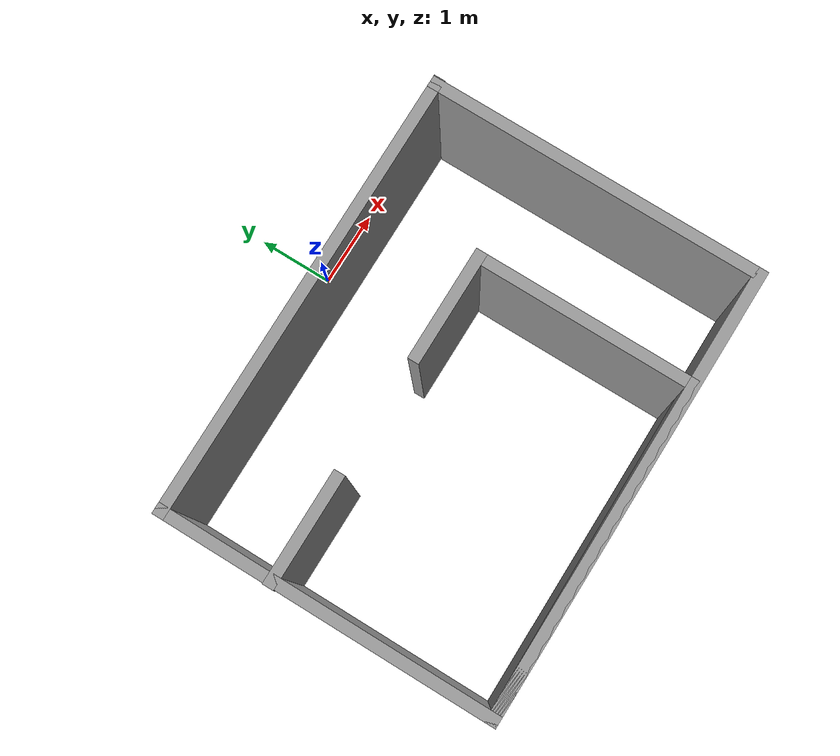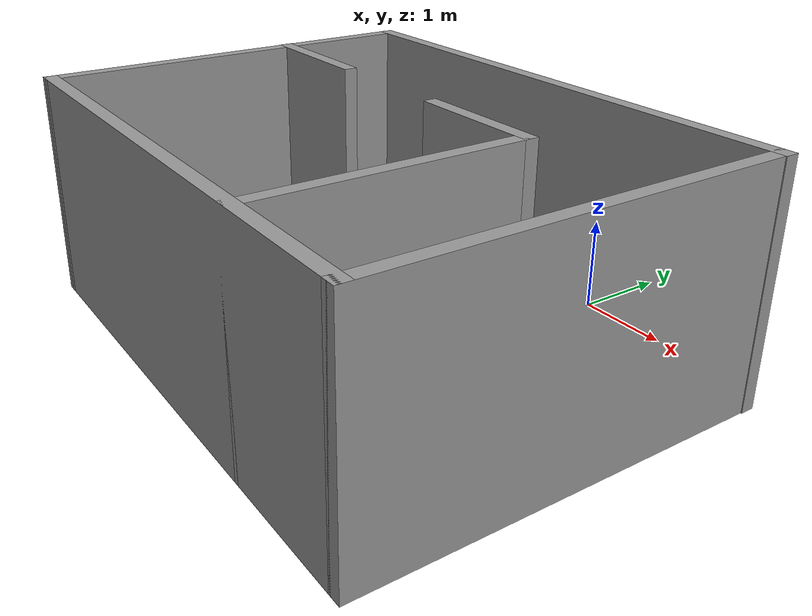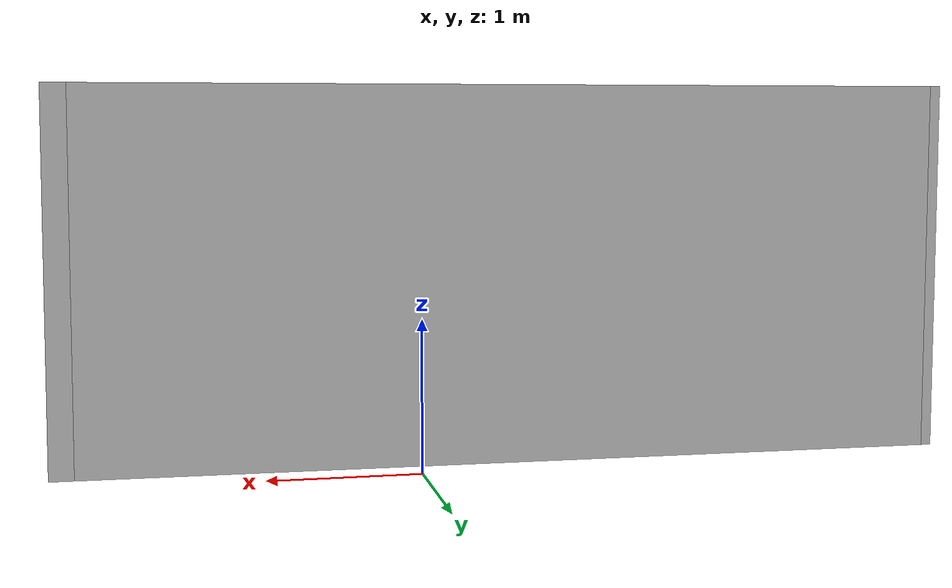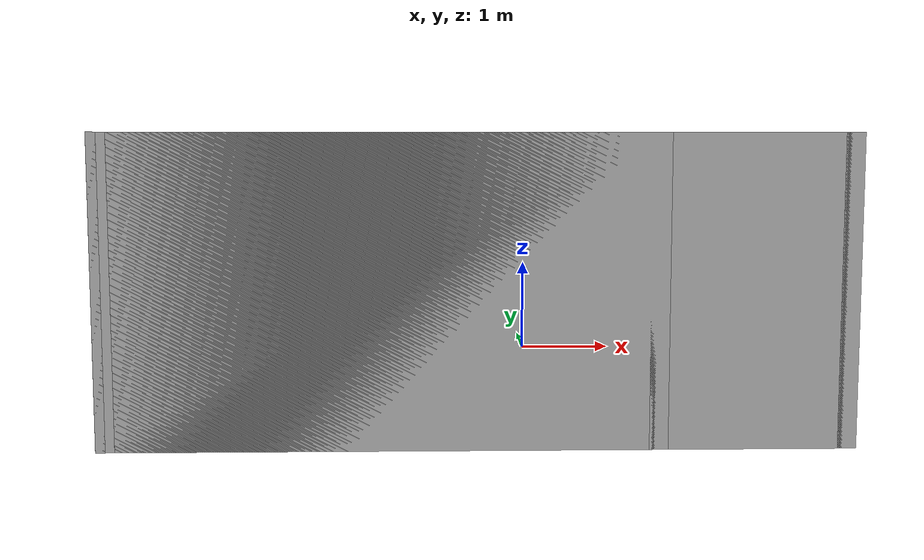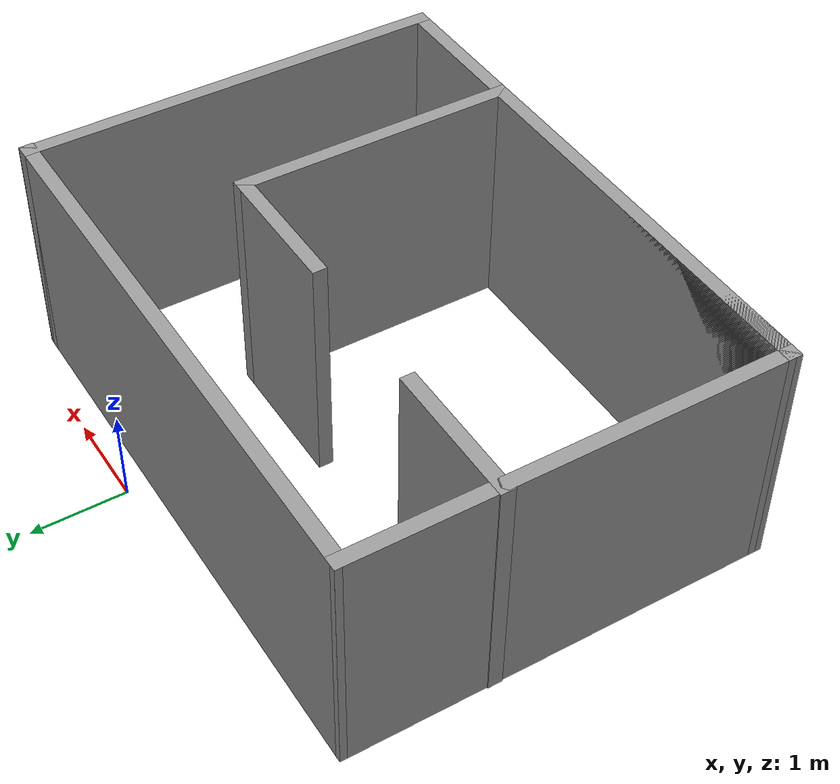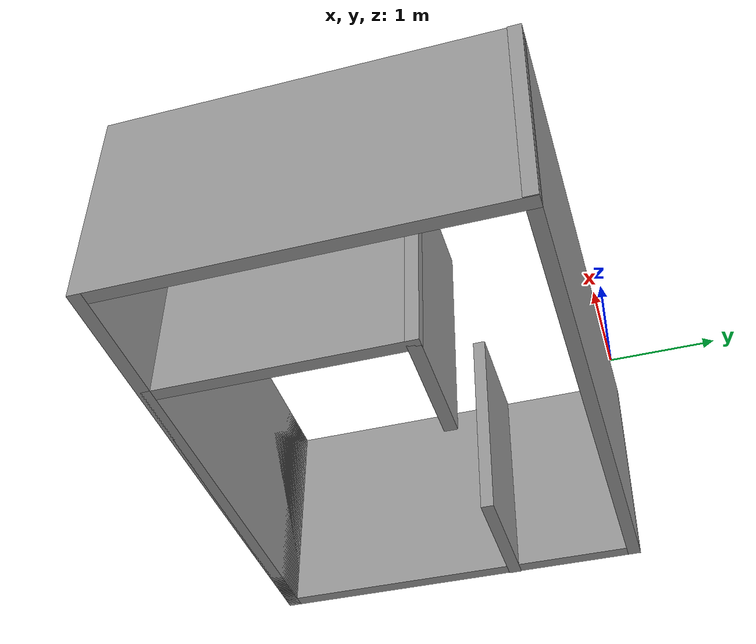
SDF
<?xml version='1.0'?>
<sdf version='1.6'>
  <model name='room_hallway'>
    <pose frame=''>-0.662245 -2.485 0 0 -0 0</pose>
    <link name='Wall_0'>
      <collision name='Wall_0_Collision'>
        <geometry>
          <box>
            <size>6 0.15 2.5</size>
          </box>
        </geometry>
        <pose frame=''>0 0 1.25 0 -0 0</pose>
      </collision>
      <visual name='Wall_0_Visual'>
        <pose frame=''>0 0 1.25 0 -0 0</pose>
        <geometry>
          <box>
            <size>6 0.15 2.5</size>
          </box>
        </geometry>
        <material>
          <script>
            <uri>file://media/materials/scripts/gazebo.material</uri>
            <name>Gazebo/Grey</name>
          </script>
          <ambient>1 1 1 1</ambient>
        </material>
        <meta>
          <layer>0</layer>
        </meta>
      </visual>
      <pose frame=''>-0.002755 -2.175 0 0 -0 0</pose>
    </link>
    <link name='Wall_1'>
      <collision name='Wall_1_Collision'>
        <geometry>
          <box>
            <size>4.5 0.15 2.5</size>
          </box>
        </geometry>
        <pose frame=''>0 0 1.25 0 -0 0</pose>
      </collision>
      <visual name='Wall_1_Visual'>
        <pose frame=''>0 0 1.25 0 -0 0</pose>
        <geometry>
          <box>
            <size>4.5 0.15 2.5</size>
          </box>
        </geometry>
        <material>
          <script>
            <uri>file://media/materials/scripts/gazebo.material</uri>
            <name>Gazebo/Grey</name>
          </script>
          <ambient>1 1 1 1</ambient>
        </material>
        <meta>
          <layer>0</layer>
        </meta>
      </visual>
      <pose frame=''>2.92225 0 0 0 -0 1.5708</pose>
    </link>
    <link name='Wall_10'>
      <collision name='Wall_10_Collision'>
        <geometry>
          <box>
            <size>1.5 0.15 2.5</size>
          </box>
        </geometry>
        <pose frame=''>0 0 1.25 0 -0 0</pose>
      </collision>
      <visual name='Wall_10_Visual'>
        <pose frame=''>0 0 1.25 0 -0 0</pose>
        <geometry>
          <box>
            <size>1.5 0.15 2.5</size>
          </box>
        </geometry>
        <material>
          <script>
            <uri>file://media/materials/scripts/gazebo.material</uri>
            <name>Gazebo/Grey</name>
          </script>
          <ambient>1 1 1 1</ambient>
        </material>
        <meta>
          <layer>0</layer>
        </meta>
      </visual>
      <pose frame=''>-2.25725 0.704997 0 0 -0 0</pose>
    </link>
    <link name='Wall_2'>
      <collision name='Wall_2_Collision'>
        <geometry>
          <box>
            <size>0.16 0.15 2.5</size>
          </box>
        </geometry>
        <pose frame=''>0 0 1.25 0 -0 0</pose>
      </collision>
      <visual name='Wall_2_Visual'>
        <pose frame=''>0 0 1.25 0 -0 0</pose>
        <geometry>
          <box>
            <size>0.16 0.15 2.5</size>
          </box>
        </geometry>
        <material>
          <script>
            <uri>file://media/materials/scripts/gazebo.material</uri>
            <name>Gazebo/Grey</name>
          </script>
          <ambient>1 1 1 1</ambient>
        </material>
        <meta>
          <layer>0</layer>
        </meta>
      </visual>
      <pose frame=''>2.92725 2.175 0 0 -0 0</pose>
    </link>
    <link name='Wall_3'>
      <collision name='Wall_3_Collision'>
        <geometry>
          <box>
            <size>6 0.15 2.5</size>
          </box>
        </geometry>
        <pose frame=''>0 0 1.25 0 -0 0</pose>
      </collision>
      <visual name='Wall_3_Visual'>
        <pose frame=''>0 0 1.25 0 -0 0</pose>
        <geometry>
          <box>
            <size>6 0.15 2.5</size>
          </box>
        </geometry>
        <material>
          <script>
            <uri>file://media/materials/scripts/gazebo.material</uri>
            <name>Gazebo/Grey</name>
          </script>
          <ambient>1 1 1 1</ambient>
        </material>
        <meta>
          <layer>0</layer>
        </meta>
      </visual>
      <pose frame=''>0.007245 2.175 0 0 -0 3.14159</pose>
    </link>
    <link name='Wall_4'>
      <collision name='Wall_4_Collision'>
        <geometry>
          <box>
            <size>4.5 0.15 2.5</size>
          </box>
        </geometry>
        <pose frame=''>0 0 1.25 0 -0 0</pose>
      </collision>
      <visual name='Wall_4_Visual'>
        <pose frame=''>0 0 1.25 0 -0 0</pose>
        <geometry>
          <box>
            <size>4.5 0.15 2.5</size>
          </box>
        </geometry>
        <material>
          <script>
            <uri>file://media/materials/scripts/gazebo.material</uri>
            <name>Gazebo/Grey</name>
          </script>
          <ambient>1 1 1 1</ambient>
        </material>
        <meta>
          <layer>0</layer>
        </meta>
      </visual>
      <pose frame=''>-2.92275 0 0 0 -0 -1.57309</pose>
    </link>
    <link name='Wall_6'>
      <collision name='Wall_6_Collision'>
        <geometry>
          <box>
            <size>4.5 0.15 2.5</size>
          </box>
        </geometry>
        <pose frame=''>0 0 1.25 0 -0 0</pose>
      </collision>
      <visual name='Wall_6_Visual'>
        <pose frame=''>0 0 1.25 0 -0 0</pose>
        <geometry>
          <box>
            <size>4.5 0.15 2.5</size>
          </box>
        </geometry>
        <material>
          <script>
            <uri>file://media/materials/scripts/gazebo.material</uri>
            <name>Gazebo/Grey</name>
          </script>
          <ambient>1 1 1 1</ambient>
        </material>
        <meta>
          <layer>0</layer>
        </meta>
      </visual>
      <pose frame=''>-0.752755 -2.175 0 0 -0 0</pose>
    </link>
    <link name='Wall_7'>
      <collision name='Wall_7_Collision'>
        <geometry>
          <box>
            <size>3 0.15 2.5</size>
          </box>
        </geometry>
        <pose frame=''>0 0 1.25 0 -0 0</pose>
      </collision>
      <visual name='Wall_7_Visual'>
        <pose frame=''>0 0 1.25 0 -0 0</pose>
        <geometry>
          <box>
            <size>3 0.15 2.5</size>
          </box>
        </geometry>
        <material>
          <script>
            <uri>file://media/materials/scripts/gazebo.material</uri>
            <name>Gazebo/Grey</name>
          </script>
          <ambient>1 1 1 1</ambient>
        </material>
        <meta>
          <layer>0</layer>
        </meta>
      </visual>
      <pose frame=''>1.42224 -0.75 0 0 -0 1.5708</pose>
    </link>
    <link name='Wall_8'>
      <collision name='Wall_8_Collision'>
        <geometry>
          <box>
            <size>1.5 0.15 2.5</size>
          </box>
        </geometry>
        <pose frame=''>0 0 1.25 0 -0 0</pose>
      </collision>
      <visual name='Wall_8_Visual'>
        <pose frame=''>0 0 1.25 0 -0 0</pose>
        <geometry>
          <box>
            <size>1.5 0.15 2.5</size>
          </box>
        </geometry>
        <material>
          <script>
            <uri>file://media/materials/scripts/gazebo.material</uri>
            <name>Gazebo/Grey</name>
          </script>
          <ambient>1 1 1 1</ambient>
        </material>
        <meta>
          <layer>0</layer>
        </meta>
      </visual>
      <pose frame=''>0.747245 0.675 0 0 -0 3.14159</pose>
    </link>
    <static>1</static>
  </model>
</sdf>
